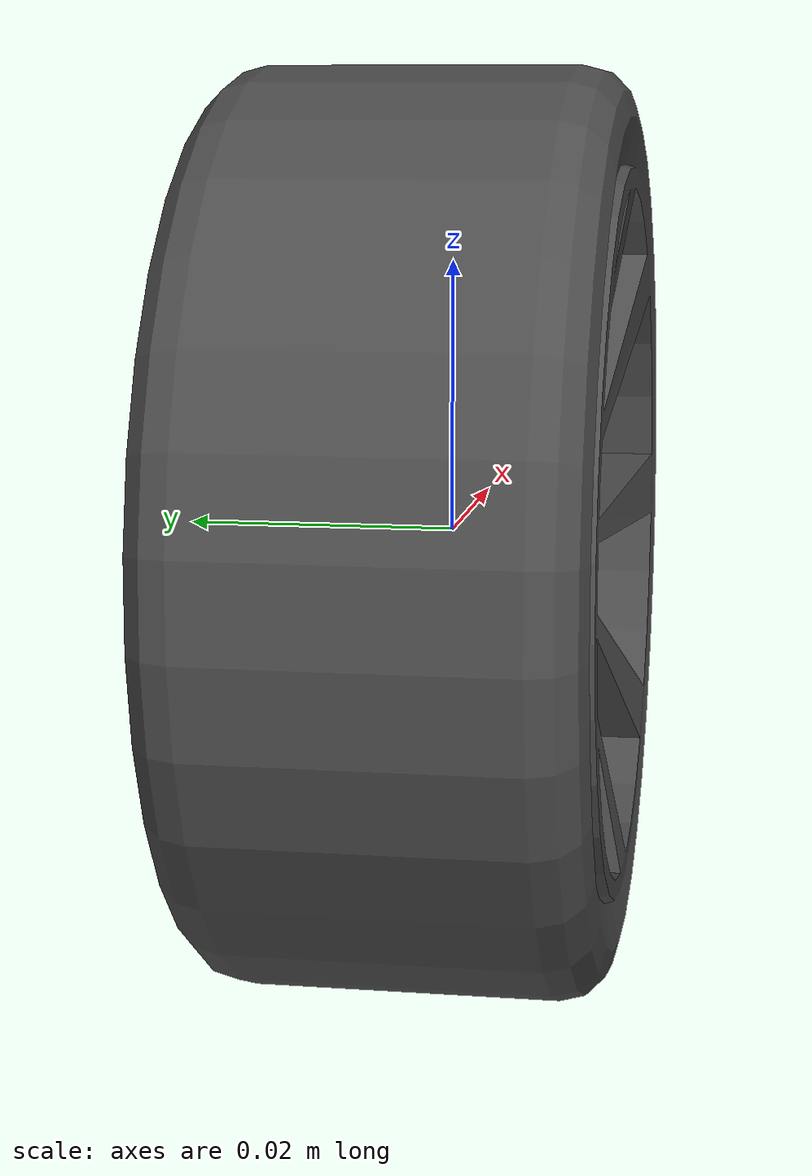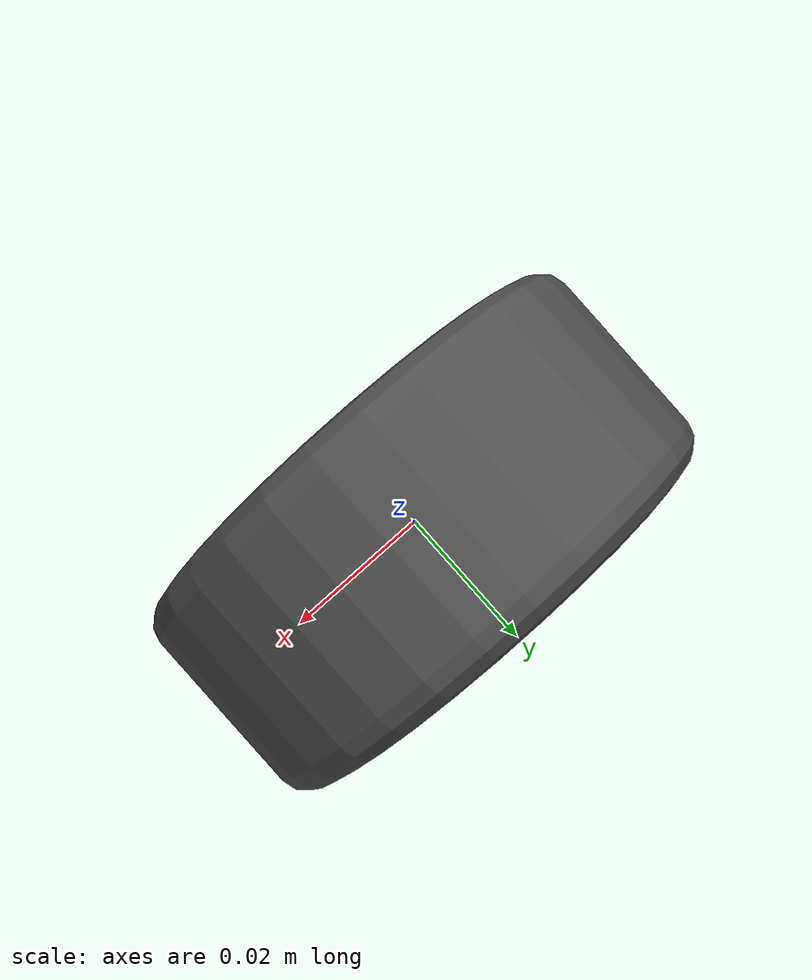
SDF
<?xml version='1.0'?>
<sdf version='1.6'>
  <model name='wheel_right'>

    <link name='link_rim'>
      <inertial>
        <mass>0.038</mass>
        <inertia>
          <ixx>0.00001283</ixx>
          <ixy>0</ixy>
          <ixz>0</ixz>
          <iyy>0.00001283</iyy>
          <iyz>0</iyz>
          <izz>0.00002069</izz>
        </inertia>
        <pose frame=''>0 0 0 0 -0 0</pose>
      </inertial>
      <pose frame=''>0.0 0.0 0 1.5708 0 0</pose>
      <gravity>1</gravity>
      <kinematic>0</kinematic>
      <enable_wind>0</enable_wind>
      <visual name='visual'>
       <pose frame=''>0 0 0 -1.5708 0 0</pose>
       <geometry>
          <mesh>
            <uri>model://wheel_right/meshes/rim.dae</uri>
            <scale>1 1 1</scale>
          </mesh>
        </geometry>
        <material>
          <lighting>1</lighting>
          <shader type='vertex'>
            <normal_map>__default__</normal_map>
          </shader>
          <ambient>0.2 0.2 0.2 1</ambient>
          <diffuse>0.3 0.3 0.3 1</diffuse>
          <specular>0.5 0.5 0.5 1</specular>
          <emissive>0.0 0.0 0.0 0.0</emissive>
        </material>
        <transparency>0</transparency>
        <cast_shadows>1</cast_shadows>
      </visual>
      <collision name='collision'>
        <laser_retro>0</laser_retro>
        <max_contacts>10</max_contacts>
        <pose frame=''>0 0 0 0 -0 0</pose>
        <geometry>
          <cylinder>
            <radius>0.033000</radius>
            <length>0.028000</length>
          </cylinder>
        </geometry>
        <surface>
          <friction>
            <ode>
              <mu>0.7</mu>
              <mu2>0.7</mu2>
              <fdir1>0 0 0</fdir1>
              <slip1>0</slip1>
              <slip2>0</slip2>
            </ode>
            <torsional>
              <coefficient>1</coefficient>
              <patch_radius>0</patch_radius>
              <surface_radius>0</surface_radius>
              <use_patch_radius>1</use_patch_radius>
              <ode>
                <slip>0</slip>
              </ode>
            </torsional>
          </friction>
          <bounce>
            <restitution_coefficient>0</restitution_coefficient>
            <threshold>1e+06</threshold>
          </bounce>
          <contact>
            <collide_without_contact>0</collide_without_contact>
            <collide_without_contact_bitmask>1</collide_without_contact_bitmask>
            <collide_bitmask>1</collide_bitmask>
            <ode>
              <soft_cfm>0</soft_cfm>
              <soft_erp>0.2</soft_erp>
              <kp>1e+07</kp>
              <kd>1</kd>
              <max_vel>0.01</max_vel>
              <min_depth>0</min_depth>
            </ode>
            <bullet>
              <split_impulse>1</split_impulse>
              <split_impulse_penetration_threshold>-0.01</split_impulse_penetration_threshold>
              <soft_cfm>0</soft_cfm>
              <soft_erp>0.2</soft_erp>
              <kp>1e+07</kp>
              <kd>1</kd>
            </bullet>
          </contact>
        </surface>
      </collision>
    </link>

  </model>
</sdf>
